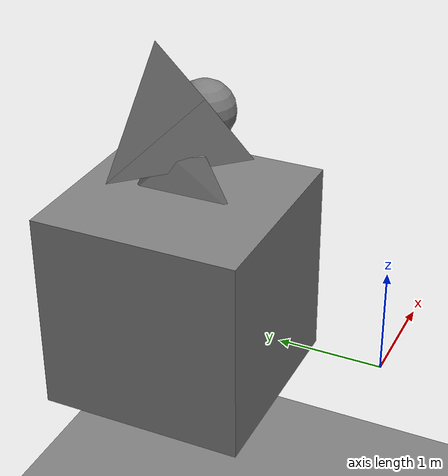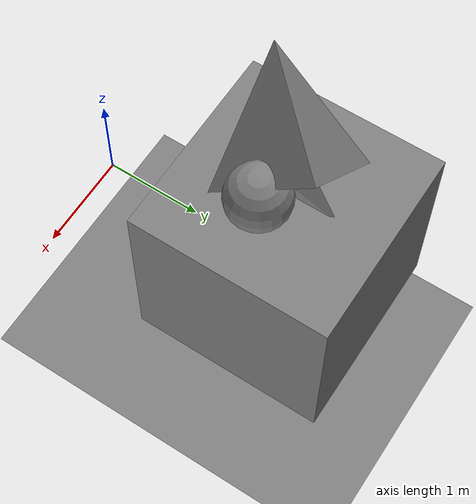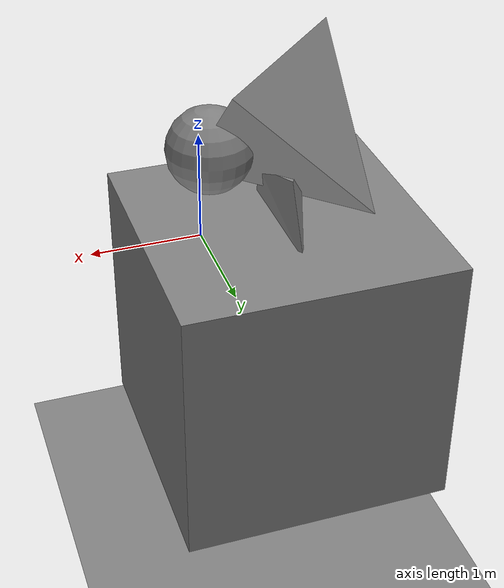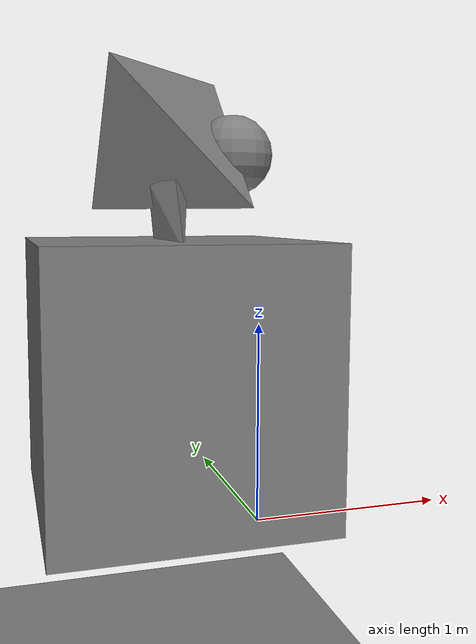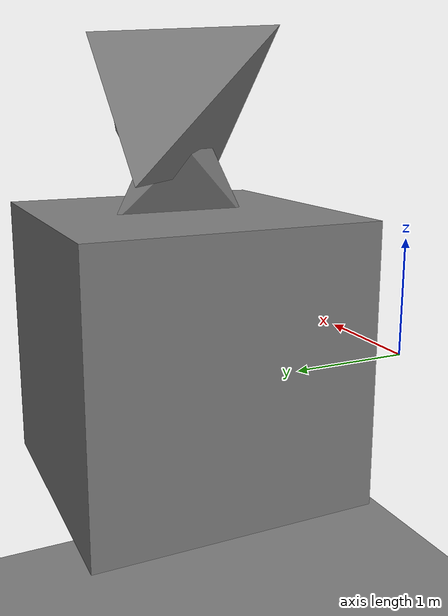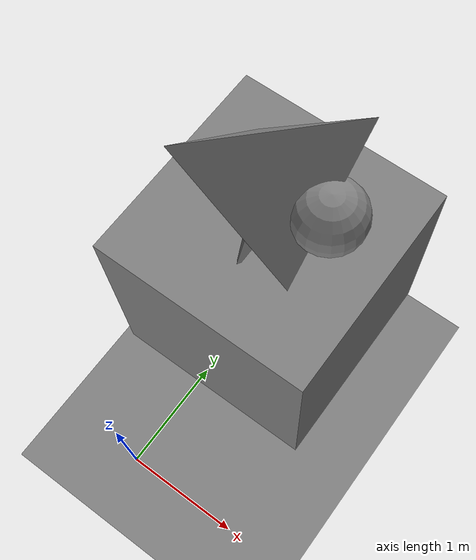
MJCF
<mujoco>
  <asset>
    <mesh name="meshbox"
          vertex="-1 -1 -1
                  1 -1 -1
                  1  1 -1
                  1  1  1
                  1 -1  1
                  -1  1 -1
                  -1  1  1
                  -1 -1  1"/>
    <mesh name="poly" scale="0.5 0.5 0.5"
     vertex="0.3 0 0  0 0.5 0  -0.3 0 0  0 -0.5 0  0 -1 1  0 1 1"
     face="0 1 5  0 5 4  0 4 3  3 4 2  2 4 5  1 2 5  0 2 1  0 3 2"/>
    <mesh name="tetrahedron"  scale="0.5 0.5 0.5"
      vertex="1 1 1  -1 -1 1  1 -1 -1  -1 1 -1"
      face="0 1 2  0 3 1  0 2 3  1 3 2"/>
  </asset>
  <custom>
    <numeric data="12" name="max_contact_points"/>
  </custom>
  <worldbody>
    <light pos="-.5 .7 1.5" cutoff="55"/>
    <body pos="0.0 2.0 0.35" euler="0 0 90">
      <freejoint/>
      <geom type="mesh" mesh="meshbox"/>
    </body>
    <body pos="0.0 2.0 1.781" euler="180 0 0">
      <freejoint/>
      <geom type="mesh" mesh="poly"/>
      <geom pos="0.5 0 -0.2" type="sphere" size="0.3"/>
    </body>
    <body pos="0.0 2.0 2.081">
      <freejoint/>
      <geom type="mesh" mesh="tetrahedron"/>
    </body>
    <body pos="0.0 0.0 -2.0">
      <geom type="plane" size="40 40 40"/>
    </body>
  </worldbody>
</mujoco>
